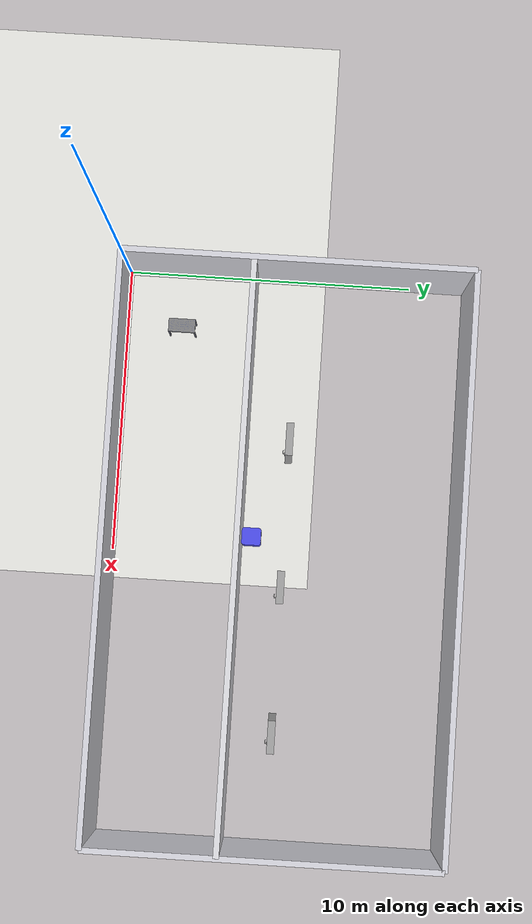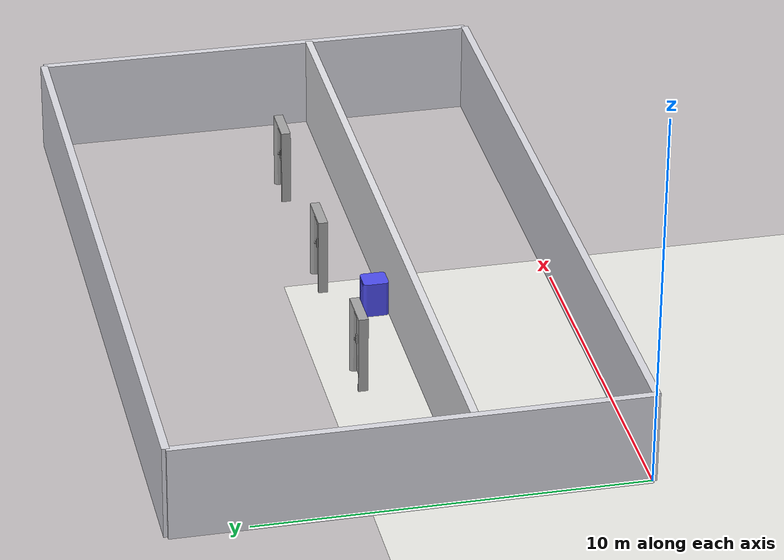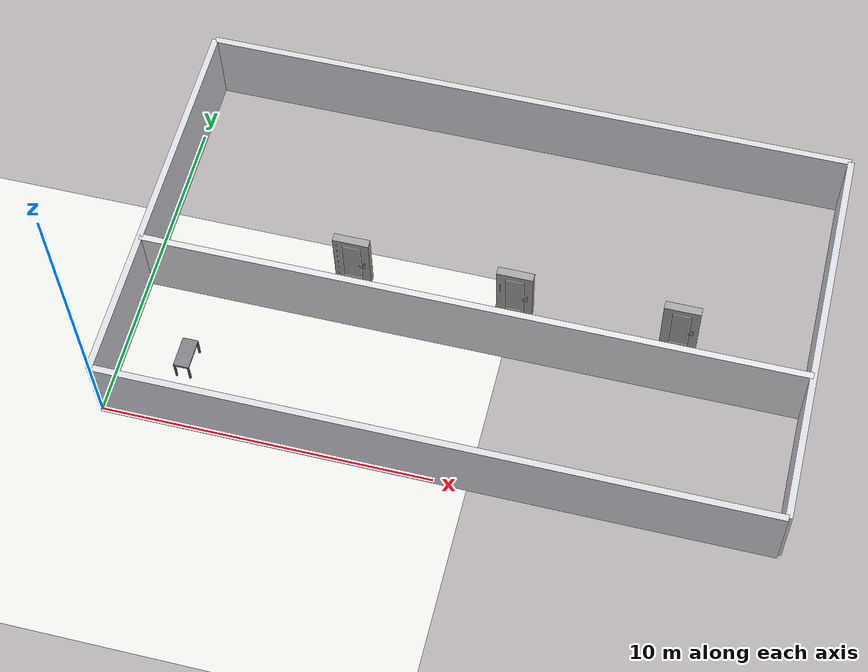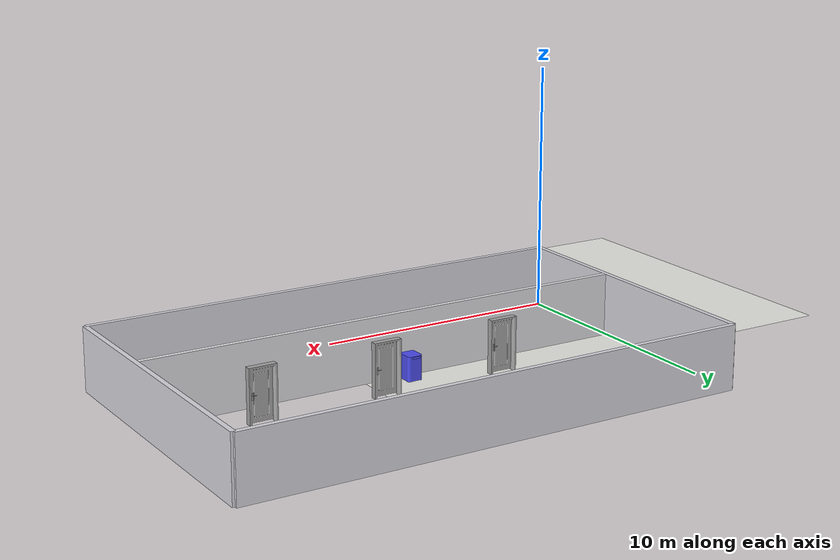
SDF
<sdf version="1.6">
 <world name="hotel_delivery">
  <plugin name="gazebo_ros_state" filename="libgazebo_ros_state.so">
   <ros><namespace>/gazebo</namespace></ros>
   <update_rate>10.0</update_rate>
  </plugin>
  <scene><ambient>0.85 0.85 0.85 1</ambient><background>0.95 0.95 0.97 1</background></scene>
  <physics name="default_physics" default="1" type="ode">
   <max_step_size>0.005</max_step_size>
   <real_time_factor>1</real_time_factor>
   <real_time_update_rate>200</real_time_update_rate>
  </physics>
  <light type="directional" name="sun">
   <pose>0 0 20 0 0 0</pose>
   <diffuse>0.8 0.8 0.8 1</diffuse>
   <direction>-0.4 0.2 -1.0</direction>
  </light>
  <model name="hotel_floor">
   <static>true</static>
   <link name="floor">
    <collision name="collision">
     <geometry><plane><normal>0 0 1</normal><size>22 14</size></plane></geometry>
    </collision>
    <visual name="visual">
     <geometry><plane><normal>0 0 1</normal><size>22 14</size></plane></geometry>
     <material><ambient>0.92 0.92 0.90 1</ambient><diffuse>0.92 0.92 0.90 1</diffuse></material>
    </visual>
   </link>
  </model>
  <model name="hotel_shell">
   <static>true</static>
   <pose>10 6 0 0 0 0</pose>
   <link name="layout">
    <collision name="north_wall">
     <pose>0 6 1.25 0 0 0</pose>
     <geometry><box><size>20 0.2 2.5</size></box></geometry>
    </collision>
    <collision name="south_wall">
     <pose>0 -6 1.25 0 0 0</pose>
     <geometry><box><size>20 0.2 2.5</size></box></geometry>
    </collision>
    <collision name="west_wall">
     <pose>-10 0 1.25 0 0 0</pose>
     <geometry><box><size>0.2 12 2.5</size></box></geometry>
    </collision>
    <collision name="east_wall">
     <pose>10 0 1.25 0 0 0</pose>
     <geometry><box><size>0.2 12 2.5</size></box></geometry>
    </collision>
    <collision name="corridor_divider">
     <pose>0 -1.5 1.25 0 0 0</pose>
     <geometry><box><size>20 0.2 2.5</size></box></geometry>
    </collision>
    <collision name="room_101_l">
     <pose>-4.5 1.5 1.25 0 0 0</pose>
     <geometry><box><size>0.2 3 2.5</size></box></geometry>
    </collision>
    <collision name="room_101_r">
     <pose>-0.5 1.5 1.25 0 0 0</pose>
     <geometry><box><size>0.2 3 2.5</size></box></geometry>
    </collision>
    <collision name="room_101_b">
     <pose>-2.5 3 1.25 0 0 0</pose>
     <geometry><box><size>4 0.2 2.5</size></box></geometry>
    </collision>
    <collision name="room_102_l">
     <pose>0.5 1.5 1.25 0 0 0</pose>
     <geometry><box><size>0.2 3 2.5</size></box></geometry>
    </collision>
    <collision name="room_102_r">
     <pose>4.5 1.5 1.25 0 0 0</pose>
     <geometry><box><size>0.2 3 2.5</size></box></geometry>
    </collision>
    <collision name="room_102_b">
     <pose>2.5 3 1.25 0 0 0</pose>
     <geometry><box><size>4 0.2 2.5</size></box></geometry>
    </collision>
    <collision name="room_103_l">
     <pose>5.5 1.5 1.25 0 0 0</pose>
     <geometry><box><size>0.2 3 2.5</size></box></geometry>
    </collision>
    <collision name="room_103_r">
     <pose>9.5 1.5 1.25 0 0 0</pose>
     <geometry><box><size>0.2 3 2.5</size></box></geometry>
    </collision>
    <collision name="room_103_b">
     <pose>7.5 3 1.25 0 0 0</pose>
     <geometry><box><size>4 0.2 2.5</size></box></geometry>
    </collision>
    <collision name="service_room">
     <pose>8 -4 1.25 0 0 0</pose>
     <geometry><box><size>4 4 2.5</size></box></geometry>
    </collision>
    <visual name="north_wall_v">
     <pose>0 6 1.25 0 0 0</pose>
     <geometry><box><size>20 0.2 2.5</size></box></geometry>
     <material><ambient>0.85 0.85 0.88 1</ambient></material>
    </visual>
    <visual name="south_wall_v">
     <pose>0 -6 1.25 0 0 0</pose>
     <geometry><box><size>20 0.2 2.5</size></box></geometry>
     <material><ambient>0.85 0.85 0.88 1</ambient></material>
    </visual>
    <visual name="west_wall_v">
     <pose>-10 0 1.25 0 0 0</pose>
     <geometry><box><size>0.2 12 2.5</size></box></geometry>
     <material><ambient>0.85 0.85 0.88 1</ambient></material>
    </visual>
    <visual name="east_wall_v">
     <pose>10 0 1.25 0 0 0</pose>
     <geometry><box><size>0.2 12 2.5</size></box></geometry>
     <material><ambient>0.85 0.85 0.88 1</ambient></material>
    </visual>
    <visual name="corridor_divider_v">
     <pose>0 -1.5 1.25 0 0 0</pose>
     <geometry><box><size>20 0.2 2.5</size></box></geometry>
     <material><ambient>0.88 0.88 0.90 1</ambient></material>
    </visual>
   </link>
  </model>
  <include><uri>model://table_dining</uri><name>pickup_table</name><pose>2.0 2.0 0 0 0 1.57</pose></include>
  <include><uri>model://door_3d</uri><name>door_101</name><pose>6.0 6.05 0 0 0 0</pose></include>
  <include><uri>model://door_3d</uri><name>door_102</name><pose>11.0 6.05 0 0 0 0</pose></include>
  <include><uri>model://door_3d</uri><name>door_103</name><pose>16.0 6.05 0 0 0 0</pose></include>
  <include><uri>model://blue_bin_cuboid</uri><name>service_cart</name><pose>9.0 4.6 0 0 0 0</pose></include>
 </world>
</sdf>

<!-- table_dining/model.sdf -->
<sdf version='1.6'>
  <model name='table_dining'>
    <link name='link_24'>
      <pose frame=''>0 0 0 0 -0 0</pose>
       <visual name='visual'>
        <pose frame=''>0 0 0 0 -0 0</pose>
        <geometry>
          <mesh>
            <uri>model://table_dining/meshes/table2.dae</uri>
            <scale>1 1 1</scale>
          </mesh>
        </geometry>
        <material>
          <script>
            <uri>model://table_dining/materials/scripts</uri>
            <uri>model://table_dining/materials/textures</uri>
            <name>dining_table</name>
          </script>
        </material>
        <cast_shadows>1</cast_shadows>
        <transparency>0</transparency>
      </visual>
      <collision name='collision'>
        <laser_retro>0</laser_retro>
        <max_contacts>10</max_contacts>
        <pose frame=''>0 0 0 0 -0 0</pose>
        <geometry>
          <mesh>
            <uri>model://table_dining/meshes/table2.dae</uri>
            <scale>1 1 1</scale>
          </mesh>
        </geometry>
       </collision>
    </link>
    <static>1</static>
    <allow_auto_disable>1</allow_auto_disable>
  </model>
</sdf>

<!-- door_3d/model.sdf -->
<sdf version='1.6'>
  <model name='door_3d'>
    <link name='link_1'>
        <visual name='visual'>
        <pose frame=''>0 0 0 0 -0 0</pose>
        <geometry>
          <mesh>
            <uri>model://door_3d/meshes/door_v2_door.dae</uri>
            <scale>1 1 1</scale>
          </mesh>
        </geometry>
       	<material>
          <script>
            <uri>model://door_3d/materials/scripts</uri>
            <uri>model://door_3d/materials/textures</uri>
            <name>door_3d</name>
          </script>
        </material>
        <cast_shadows>1</cast_shadows>
        <transparency>0</transparency>
      </visual>
      <collision name='collision'>
        <laser_retro>0</laser_retro>
        <max_contacts>10</max_contacts>
        <pose frame=''>0 0 0 0 -0 0</pose>
        <geometry>
          <mesh>
            <uri>model://door_3d/meshes/door_v2_door.dae</uri>
            <scale>1 1 1</scale>
          </mesh>
        </geometry>
       </collision>
    </link>
    <link name='link_2'>
         <visual name='visual'>
        <pose frame=''>0 0 0 0 -0 0</pose>
        <geometry>
          <mesh>
            <uri>model://door_3d/meshes/door_v2_handle.dae</uri>
            <scale>1 1 1</scale>
          </mesh>
        </geometry>
           	<material>
          <script>
            <uri>model://door_3d/materials/scripts</uri>
            <uri>model://door_3d/materials/textures</uri>
            <name>door_handle</name>
          </script>
        </material>
        <cast_shadows>1</cast_shadows>
        <transparency>0</transparency>
      </visual>
      <collision name='collision'>
        <laser_retro>0</laser_retro>
        <max_contacts>10</max_contacts>
        <pose frame=''>0 0 0 0 -0 0</pose>
        <geometry>
          <mesh>
            <uri>model://door_3d/meshes/door_v2_handle.dae</uri>
            <scale>1 1 1</scale>
          </mesh>
        </geometry>
        </collision>
    </link>
    <static>1</static>
    <allow_auto_disable>1</allow_auto_disable>
  </model>
</sdf>

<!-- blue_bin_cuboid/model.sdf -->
<sdf version='1.6'>
  <model name='blue_bin_cuboid'>
    <link name='link_0'>
       <visual name='visual'>
        <pose frame=''>0 0 0 0 -0 0</pose>
        <geometry>
          <mesh>
            <uri>model://blue_bin_cuboid/meshes/blue_bin.stl</uri>
            <scale>1 1 1</scale>
          </mesh>
        </geometry>
        <material>
          <lighting>1</lighting>
             <ambient>0.074 0.074 0.937 1</ambient>
          <diffuse>0.3 0.3 0.937 1</diffuse>
          <specular>0.01 0.01 0.01 1</specular>
          <emissive>0.01 0.01 0.01 1</emissive>
          <shader type='vertex'>
            <normal_map>__default__</normal_map>
          </shader>
        </material>
        <cast_shadows>1</cast_shadows>
        <transparency>0</transparency>
      </visual>
      <collision name='collision'>
        <laser_retro>0</laser_retro>
        <max_contacts>10</max_contacts>
        <pose frame=''>0 0 0 0 -0 0</pose>
        <geometry>
          <mesh>
            <uri>model://blue_bin_cuboid/meshes/blue_bin.stl</uri>
            <scale>1 1 1</scale>
          </mesh>
        </geometry>
       </collision>
    </link>
    <static>1</static>
    <allow_auto_disable>1</allow_auto_disable>
  </model>
</sdf>
